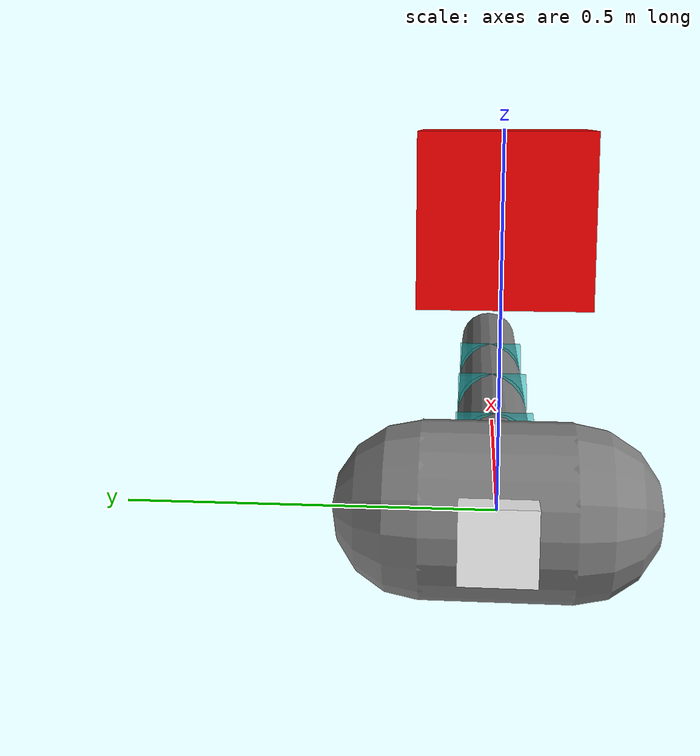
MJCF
<mujoco model="arm3d">
  <compiler inertiafromgeom="true" angle="radian" coordinate="local" />
  <option timestep="0.01" gravity="0 0 0" iterations="20" integrator="Euler" />

  <default>
    <joint armature='0.04' damping="1" limited="true"/>
    <geom friction=".8 .1 .1" density="300" margin="0.002" condim="1" contype="1" conaffinity="1"/>
  </default>

  <worldbody>
    <body name="palm" pos="0 0 0">
            <geom type="capsule" fromto="0 -0.1 0 0 0.1 0" size="0.12"/>

            <body name="proximal_1" pos="0 0 0">
                <joint name="proximal_j_1" type="hinge" pos="0 0 0" axis="0 1 0" range="-2.5236 2.3963" damping="1.0" />
                <geom type="capsule"  fromto="0 0 0 0.3 0 0" size="0.06" contype="1" conaffinity="1"/>
                <body name="distal_1" pos="0.3 0 0">
                    <joint name="distal_j_1" type="hinge" pos="0 0 0" axis="0 1 0" range="-2.3213 2.3" damping="1.0"/>

                        <geom name="DIP_wrap1"  type="cylinder" pos="0 0 0"
                        zaxis="0 1 0" size="0.06 0.06" rgba="0 .7 .7 .5"/>
                    <geom type="capsule"  fromto="0 0 0 0.3 0 0" size="0.06" contype="1" conaffinity="1"/>
                    <body name="distal_2" pos="0.3 0 0">
                        <joint name="distal_j_2" type="hinge" pos="0 0 0" axis="0 1 0" range="-2.3213 2.3" damping="1.0"/>

                        <geom name="DIP_wrap2"  type="cylinder" pos="0 0 0"
                        zaxis="0 1 0" size="0.06 0.06" rgba="0 .7 .7 .5"/>
                        <geom type="capsule" fromto="0 0 0 0.3 0 0" size="0.06" contype="1" conaffinity="1"/>
                        <body name="distal_3" pos="0.3 0 0">
                            <joint name="distal_j_3" type="hinge" pos="0 0 0" axis="0 1 0" range="-2.3213 2.3" damping="1.0"/>
                            <geom type="capsule" fromto="0 0 0 0.4 0 0" size="0.06" contype="1" conaffinity="1"/>

                        <geom name="DIP_wrap3"  type="cylinder" pos="0 0 0"
                        zaxis="0 1 0" size="0.06 0.06" rgba="0 .7 .7 .5"/>
                            <body name="distal_4" pos="0.3 0 0">
                                <site name="tip arm" pos="0 0 0" size="0.01" />
                            </body>
                        </body>
                    </body>
                </body>
            </body>
        </body>

    <body name="wall" pos="-0.1 0. 0.">
      <geom  rgba="0.3 0. 1. 0"  type="capsule" fromto="-20. 0. 0. -.2 0. 0." size="0.1" contype="1" conaffinity="1" />
      <geom  rgba="0.3 0. 1. 0" type="capsule" fromto="20. 0. 0. 0.2 0. 0." size="0.1" contype="1" conaffinity="1" />
      <body name="object" pos="0.0 0.0 0.0">
          <geom rgba="1. 1. 1. 1" type="box" size="0.05 0.05 0.05" density='0.00001' contype="1" conaffinity="1"/>
          <joint name="obj_slidez" type="slide" pos="0.05 0.05 0.05" axis="0 0 1" range="-10.3213 10.3" damping="0.5"/>
          <body name="distal_10" pos="0 0 0">
              <site name="obj_pos" pos="0.05 0.05 0.05" size="0.01" />
          </body>
      </body>
      <body name="goal" pos="0 0 0.4">
        <geom rgba="1. 0. 0. 1" type="box" size="0.1 0.1 0.1" density='0.00001' contype="0" conaffinity="0"/>
        <body name="distal_11" pos="0 0 0">
          <site name="goal_pos" pos="0.0 0.0 0.0" size="0.02" />
        </body>
      </body>
    </body>

  </worldbody>

  <actuator>
    <motor joint="proximal_j_1" ctrlrange="-2 2" ctrllimited="true"/>
    <motor joint="distal_j_1" ctrlrange="-2 2" ctrllimited="true"/>
    <motor joint="distal_j_2" ctrlrange="-2 2" ctrllimited="true"/>
        <motor joint="distal_j_3" ctrlrange="-2 2" ctrllimited="true"/>
  </actuator>
</mujoco>
